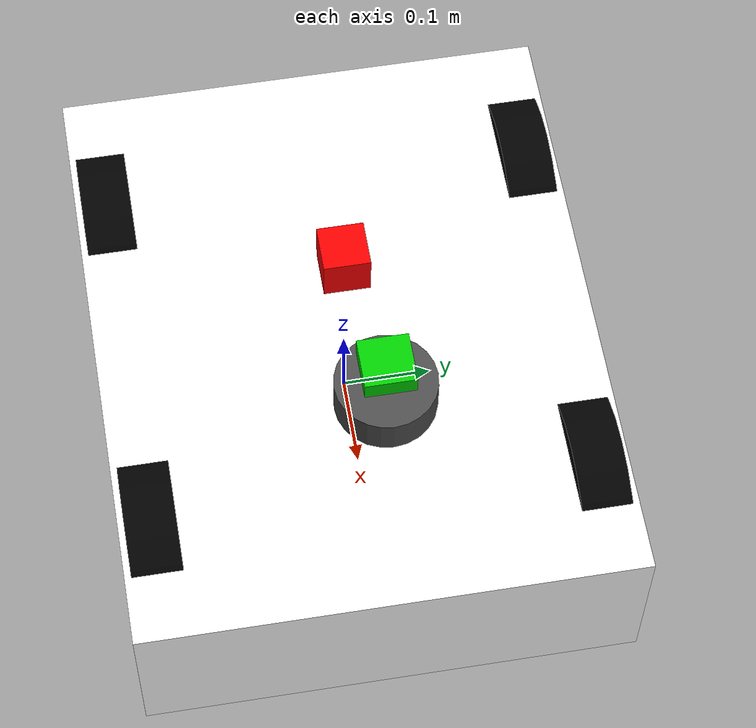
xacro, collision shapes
<?xml version="1.0" encoding="utf-8"?>
<robot name="fw_mid" xmlns:xacro="http://www.ros.org/wiki/xacro">

    <xacro:include filename="/home/hdm/Workspace/lio-sam_simulation_navigation/robot_bringup/urdf/macros.xacro" />

    <link name="base_footprint">
    </link>

    <link name="base_link">
        <visual>
            <geometry>
                <mesh filename="/home/hdm/Workspace/lio-sam_simulation_navigation/robot_bringup/urdf/fw-mid-chassis.STL" scale="1 1 1"/>
            </geometry>
            <origin xyz="-0.34 -0.275 0.01" rpy="1.57 0 1.57" />
            <material name="white">
                <color rgba="1 1 1 1" />
            </material>
        </visual>
        <collision>
            <geometry>
                <box size="0.68 0.55 0.2" />
            </geometry>
            <origin xyz="0.0 0.0 0.0" rpy="0.0 0.0 0.0" />
        </collision>
        <inertial>
            <origin xyz="0 0 0" />
            <mass value="52" />
            <inertia ixx="2.15" ixy="0" ixz="0" iyy="2.84" iyz="0" izz="3.31"/>
        </inertial>
    </link>

    <joint name="base_link2base_footprint" type="fixed">
        <parent link="base_footprint" />
        <child link="base_link"/>
        <origin xyz="0 0 0.032" />
    </joint>

    <link name="left_steering_hinge">
        <visual>
            <geometry>
                <cylinder radius="0.02" length="0.005" />
            </geometry>
            <origin xyz="0 0 0" rpy="1.57 0 0" />
            <material name="black">
                <color rgba="0.0 0.0 0.0 1.0" />
            </material>
        </visual>
        <collision>
            <geometry>
                <cylinder radius="0.01" length="0.005" />
            </geometry>
            <origin xyz="0.0 0.0 0.0" rpy="1.57 0.0 0.0" />
        </collision>
        <inertial>
            <origin xyz="0 0 0" />
            <mass value="1" />
            <inertia ixx="2.7E-05" ixy="0" ixz="0" iyy="2.7E-05" iyz="0" izz="5E-05" />
        </inertial>
    </link>
    <joint name="left_steering_hinge_joint" type="revolute">
        <parent link="base_link" />
        <child link="left_steering_hinge" />
        <origin xyz="0.2 0.24 0" />
        <axis xyz="0 0 1" />
        <limit lower="-1.57" upper="1.57" effort="10.0" velocity="50.0"/>
    </joint>

    <link name="left_front_wheel">
        <visual>
            <geometry>
                <mesh filename="/home/hdm/Workspace/lio-sam_simulation_navigation/robot_bringup/urdf/fw-mid-luntai.STL" scale="1 1 1"/>
            </geometry>
            <origin xyz="0.12 -0.102 0.12" rpy="1.57 1.57 -3.14" />
            <material name="black"/>
        </visual>
        <collision>
            <geometry>
                <cylinder radius="0.12" length="0.055" />
            </geometry>
            <origin xyz="0.0 0.0 0.0" rpy="1.57 0.0 0.0" />
        </collision>
        <inertial>
            <origin xyz="0 0 0" />
            <mass value="4" />
            <inertia ixx="0.01603" ixy="0" ixz="0" iyy="0.01603" iyz="0" izz="0.0288" />
        </inertial>
    </link>
    <joint name="left_front_wheel_joint" type="continuous">
        <parent link="left_steering_hinge" />
        <child link="left_front_wheel" />
        <origin xyz="0 0.0 0" />
        <axis xyz="0 1 0" />
        <limit effort="10" velocity="1000" />
    </joint>

    <link name="right_steering_hinge">
        <visual>
            <geometry>
                 <cylinder radius="0.02" length="0.005" />
            </geometry>
            <origin xyz="0 0 0" rpy="1.57 0 0" />
            <material name="black"/>
        </visual>
        <collision>
            <geometry>
                <cylinder radius="0.01" length="0.005" />
            </geometry>
            <origin xyz="0.0 0.0 0.0" rpy="1.57 0.0 0.0" />
        </collision>
        <inertial>
            <origin xyz="0 0 0" />
            <mass value="1" />
            <inertia ixx="2.7E-05" ixy="0" ixz="0" iyy="2.7E-05" iyz="0" izz="5E-05" />
        </inertial>
    </link>
    <joint name="right_steering_hinge_joint" type="revolute">
        <parent link="base_link" />
        <child link="right_steering_hinge" />
        <origin xyz="0.2 -0.24 0" />
        <axis xyz="0 0 1" />
        <limit lower="-1.57" upper="1.57" effort="10.0" velocity="50.0"/>
    </joint>

    <link name="right_front_wheel">
        <visual>
            <geometry>
                <mesh filename="/home/hdm/Workspace/lio-sam_simulation_navigation/robot_bringup/urdf/fw-mid-luntai.STL" scale="1 1 1"/>
            </geometry>
            <origin xyz="-0.12 0.102 0.12" rpy="1.57 1.57 0" />
            <material name="black"/>
        </visual>
        <collision>
            <geometry>
                <cylinder radius="0.12" length="0.055" />
            </geometry>
            <origin xyz="0.0 0.0 0.0" rpy="1.57 0.0 0.0" />
        </collision>
        <inertial>
            <origin xyz="0 0 0" />
            <mass value="4" />
            <inertia ixx="0.01603" ixy="0" ixz="0" iyy="0.01603" iyz="0" izz="0.0288" />
        </inertial>
    </link>
    <joint name="right_front_wheel_joint" type="continuous">
        <parent link="right_steering_hinge" />
        <child link="right_front_wheel" />
        <origin xyz="0 -0.0 0" />
        <axis xyz="0 1 0" />
        <limit effort="10" velocity="1000" />
    </joint>

    <link name="rear_left_steering_hinge">
        <visual>
            <geometry>
                <cylinder radius="0.02" length="0.005" />
            </geometry>
            <origin xyz="0 0 0" rpy="1.57 0 0" />
            <material name="black"/>
        </visual>
        <collision>
            <geometry>
                <cylinder radius="0.01" length="0.005" />
            </geometry>
            <origin xyz="0.0 0.0 0.0" rpy="1.57 0.0 0.0" />
        </collision>
        <inertial>
            <origin xyz="0 0 0" />
            <mass value="1" />
            <inertia ixx="2.7E-05" ixy="0" ixz="0" iyy="2.7E-05" iyz="0" izz="5E-05" />
        </inertial>
    </link>
    <joint name="rear_left_steering_hinge_joint" type="revolute">
        <parent link="base_link" />
        <child link="rear_left_steering_hinge" />
        <origin xyz="-0.2 0.24 0" />
        <axis xyz="0 0 1" />
        <limit lower="-1.57" upper="1.57" effort="10.0" velocity="50.0"/>
    </joint>

    <link name="left_rear_wheel">
        <visual>
            <geometry>
                <mesh filename="/home/hdm/Workspace/lio-sam_simulation_navigation/robot_bringup/urdf/fw-mid-luntai.STL" scale="1 1 1"/>
            </geometry>
            <origin xyz="0.12 -0.102 0.12" rpy="1.57 1.57 3.14" />
            <material name="black"/>
        </visual>
        <collision>
            <geometry>
                <cylinder radius="0.12" length="0.055" />
            </geometry>
            <origin xyz="0.0 0.0 0.0" rpy="1.57 0.0 0.0" />
        </collision>
        <inertial>
            <origin xyz="0 0 0" />
            <mass value="4" />
            <inertia ixx="0.01603" ixy="0" ixz="0" iyy="0.01603" iyz="0" izz="0.0288" />
        </inertial>
    </link>
    <joint name="left_rear_wheel_joint" type="continuous">
        <parent link="rear_left_steering_hinge" />
        <child link="left_rear_wheel" />
        <origin xyz="0 0.0 0" />
        <axis xyz="0 1 0" />
        <limit effort="10" velocity="1000" />
    </joint>

    <link name="rear_right_steering_hinge">
        <visual>
            <geometry>
                <cylinder radius="0.02" length="0.005" />
            </geometry>
            <origin xyz="0 0 0" rpy="1.57 0 0" />
            <material name="black"/>
        </visual>
        <collision>
            <geometry>
                <cylinder radius="0.01" length="0.005" />
            </geometry>
            <origin xyz="0.0 0.0 0.0" rpy="1.57 0.0 0.0" />
        </collision>
        <inertial>
            <origin xyz="0 0 0" />
            <mass value="1" />
            <inertia ixx="2.7E-05" ixy="0" ixz="0" iyy="2.7E-05" iyz="0" izz="5E-05" />
        </inertial>
    </link>
    <joint name="rear_right_steering_hinge_joint" type="revolute">
        <parent link="base_link" />
        <child link="rear_right_steering_hinge" />
        <origin xyz="-0.2 -0.24 0" />
        <axis xyz="0 0 1" />
        <limit lower="-1.57" upper="1.57" effort="10.0" velocity="50.0"/>
    </joint>

    <link name="right_rear_wheel">
        <visual>
            <geometry>
                <mesh filename="/home/hdm/Workspace/lio-sam_simulation_navigation/robot_bringup/urdf/fw-mid-luntai.STL" scale="1 1 1"/>
            </geometry>
            <origin xyz="-0.12 0.102 0.12" rpy="1.57 1.57 0" />
            <material name="black"/>
        </visual>
        <collision>
            <geometry>
                <cylinder radius="0.12" length="0.055" />
            </geometry>
            <origin xyz="0.0 0.0 0.0" rpy="1.57 0.0 0.0" />
        </collision>
        <inertial>
            <origin xyz="0 0 0" />
            <mass value="4" />
            <inertia ixx="0.01603" ixy="0" ixz="0" iyy="0.01603" iyz="0" izz="0.0288" />
        </inertial>
    </link>
    <joint name="right_rear_wheel_joint" type="continuous">
        <parent link="rear_right_steering_hinge" />
        <child link="right_rear_wheel" />
        <origin xyz="0 -0.0 0" />
        <axis xyz="0 1 0" />
        <limit effort="10" velocity="1000" />
    </joint>

    <link name="imu_link">
        <inertial>
            <mass value="0.01"/>
            <origin xyz="0 0 0" rpy="0 0 0"/>
            <inertia ixx="1e-6" ixy="0" ixz="0" iyy="1e-6" iyz="0" izz="1e-6"/>
        </inertial>
        <visual>
            <origin xyz="0 0 0" rpy="0 0 0"/>
            <geometry>
                <box size="0.05 0.05 0.05"/>
            </geometry>
            <material name="red">
                <color rgba="1.0 0.0 0.0 1.0"/>
            </material>
        </visual>
        <collision>
            <origin xyz="0 0 0" rpy="0 0 0"/>
            <geometry>
                <box size="0.05 0.05 0.05"/>
            </geometry>
        </collision>
    </link>

    <joint name="imu_joint" type="fixed">
        <parent link="base_link"/>
        <child link="imu_link"/>
        <origin xyz="0 0 0.24" rpy="0 0 0"/> </joint>

    <gazebo reference="imu_link">
        <material>Gazebo/Red</material>
        <sensor type="imu" name="imu_sensor">
            <always_on>true</always_on>
            <update_rate>500</update_rate>
            <imu>
                <angular_velocity>
                    <x>
                        <noise type="gaussian">
                            <mean>0.0</mean>
                            <stddev>2e-4</stddev>
                        </noise>
                    </x>
                    <y>
                        <noise type="gaussian">
                            <mean>0.0</mean>
                            <stddev>2e-4</stddev>
                        </noise>
                    </y>
                    <z>
                        <noise type="gaussian">
                            <mean>0.0</mean>
                            <stddev>2e-4</stddev>
                        </noise>
                    </z>
                </angular_velocity>
                <linear_acceleration>
                    <x>
                        <noise type="gaussian">
                            <mean>0.0</mean>
                            <stddev>1.7e-2</stddev>
                        </noise>
                    </x>
                    <y>
                        <noise type="gaussian">
                            <mean>0.0</mean>
                            <stddev>1.7e-2</stddev>
                        </noise>
                    </y>
                    <z>
                        <noise type="gaussian">
                            <mean>0.0</mean>
                            <stddev>1.7e-2</stddev>
                        </noise>
                    </z>
                </linear_acceleration>
            </imu>
            <plugin name="imu_plugin" filename="libgazebo_ros_imu_sensor.so">
                <ros>
                    <namespace>/imu</namespace>
                    <remapping>~/out:=data</remapping>
                </ros>
                <frame_name>imu_link</frame_name>
            </plugin>
        </sensor>
    </gazebo>

    <link name="lidar_link">
        <inertial>
            <mass value="0.1"/>
            <origin xyz="0 0 0" rpy="0 0 0"/>
            <inertia ixx="1e-6" ixy="0" ixz="0" iyy="1e-6" iyz="0" izz="1e-6"/>
        </inertial>
        <visual>
            <origin xyz="0 0 0" rpy="0 0 0"/>
            <geometry>
                <cylinder radius="0.05" length="0.04"/>
            </geometry>
            <material name="grey">
                <color rgba="0.3 0.3 0.3 1.0"/>
            </material>
        </visual>
        <collision>
            <origin xyz="0 0 0" rpy="0 0 0"/>
            <geometry>
                <cylinder radius="0.05" length="0.04"/>
            </geometry>
        </collision>
    </link>

    <joint name="lidar_joint" type="fixed">
        <parent link="base_link"/>
        <child link="lidar_link"/>
        <origin xyz="0.25 0 0.4" rpy="0 0 0"/> </joint>

    <gazebo reference="lidar_link">
        <material>Gazebo/Grey</material>
        <sensor type="ray" name="velodyne_vlp16">
            <pose>0 0 0 0 0 0</pose>
            <visualize>false</visualize>
            <update_rate>10</update_rate>
            <ray>
                <scan>
                    <horizontal>
                        <samples>1800</samples>
                        <resolution>1</resolution>
                        <min_angle>-3.14159265</min_angle>
                        <max_angle>3.14159265</max_angle>
                    </horizontal>
                    <vertical>
                        <samples>16</samples>
                        <resolution>1</resolution>
                        <min_angle>-0.261799</min_angle>
                        <max_angle>0.261799</max_angle>
                    </vertical>
                </scan>
                <range>
                    <min>0.1</min>
                    <max>130.0</max>
                    <resolution>0.01</resolution>
                </range>
                <noise>
                    <type>gaussian</type>
                    <mean>0.0</mean>
                    <stddev>0.01</stddev>
                </noise>
            </ray>
            <plugin name="gazebo_ros_velodyne_laser" filename="libgazebo_ros_velodyne_laser.so">
                <topicName>/velodyne</topicName>
                <frameName>lidar_link</frameName>
                <organize_cloud>true</organize_cloud>
                <min_range>0.9</min_range>
                <max_range>130.0</max_range>
                <gaussianNoise>0.008</gaussianNoise>
            </plugin>
        </sensor>
    </gazebo>

    <link name="gnss_link">
        <visual>
            <geometry>
                <box size="0.05 0.05 0.02"/>
            </geometry>
            <material name="green">
                <color rgba="0.0 0.8 0.0 1.0"/>
            </material>
        </visual>
        <collision>
            <geometry>
                <box size="0.05 0.05 0.02"/>
            </geometry>
        </collision>
        <inertial>
            <mass value="0.01"/>
            <inertia ixx="1e-6" ixy="0" ixz="0" iyy="1e-6" iyz="0" izz="1e-6"/>
        </inertial>
    </link>

    <joint name="gnss_joint" type="fixed">
        <parent link="base_link"/>
        <child link="gnss_link"/>
        <origin xyz="0.25 0 0.45" rpy="0 0 0"/> </joint>

    <gazebo reference="gnss_link">
        <material>Gazebo/Green</material>
        <sensor type="gps" name="gps_sensor">
            <always_on>true</always_on>
            <update_rate>5.0</update_rate>
            <plugin name="gnss_plugin" filename="libgazebo_ros_gps_sensor.so">
                <ros>
                    <namespace>/gnss</namespace>
                    <remapping>~/out:=data</remapping>
                </ros>
                <frame_name>gnss_link</frame_name>
            </plugin>
        </sensor>
    </gazebo>

    <ros2_control name="GazeboSystem" type="system">
        <hardware>
            <plugin>gazebo_ros2_control/GazeboSystem</plugin>
        </hardware>

        <joint name="left_steering_hinge_joint">
            <command_interface name="position"><param name="min">-1.57</param><param name="max">1.57</param></command_interface>
            <state_interface name="position"/><state_interface name="velocity"/>
        </joint>
        <joint name="right_steering_hinge_joint">
            <command_interface name="position"><param name="min">-1.57</param><param name="max">1.57</param></command_interface>
            <state_interface name="position"/><state_interface name="velocity"/>
        </joint>
        <joint name="rear_left_steering_hinge_joint">
            <command_interface name="position"><param name="min">-1.57</param><param name="max">1.57</param></command_interface>
            <state_interface name="position"/><state_interface name="velocity"/>
        </joint>
        <joint name="rear_right_steering_hinge_joint">
            <command_interface name="position"><param name="min">-1.57</param><param name="max">1.57</param></command_interface>
            <state_interface name="position"/><state_interface name="velocity"/>
        </joint>

        <joint name="left_front_wheel_joint">
            <command_interface name="velocity"/>
            <state_interface name="position"/><state_interface name="velocity"/>
        </joint>
        <joint name="right_front_wheel_joint">
            <command_interface name="velocity"/>
            <state_interface name="position"/><state_interface name="velocity"/>
        </joint>
        <joint name="left_rear_wheel_joint">
            <command_interface name="velocity"/>
            <state_interface name="position"/><state_interface name="velocity"/>
        </joint>
        <joint name="right_rear_wheel_joint">
            <command_interface name="velocity"/>
            <state_interface name="position"/><state_interface name="velocity"/>
        </joint>
    </ros2_control>

    <gazebo>
        <plugin name="gazebo_ros2_control" filename="libgazebo_ros2_control.so">
            <parameters>/home/hdm/Workspace/lio-sam_simulation_navigation/robot_bringup/config/controllers.yaml</parameters>
        </plugin>
    </gazebo>

</robot>
